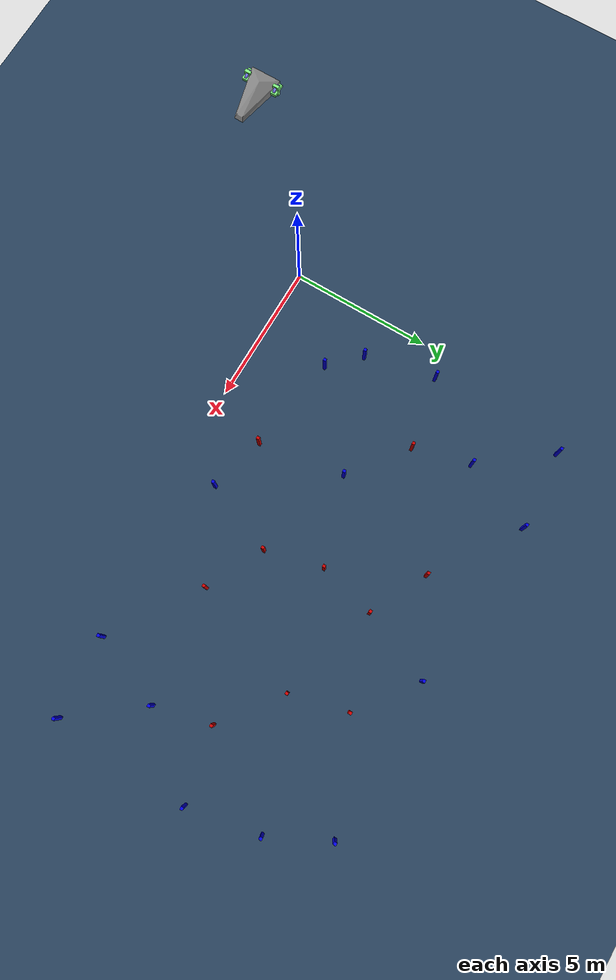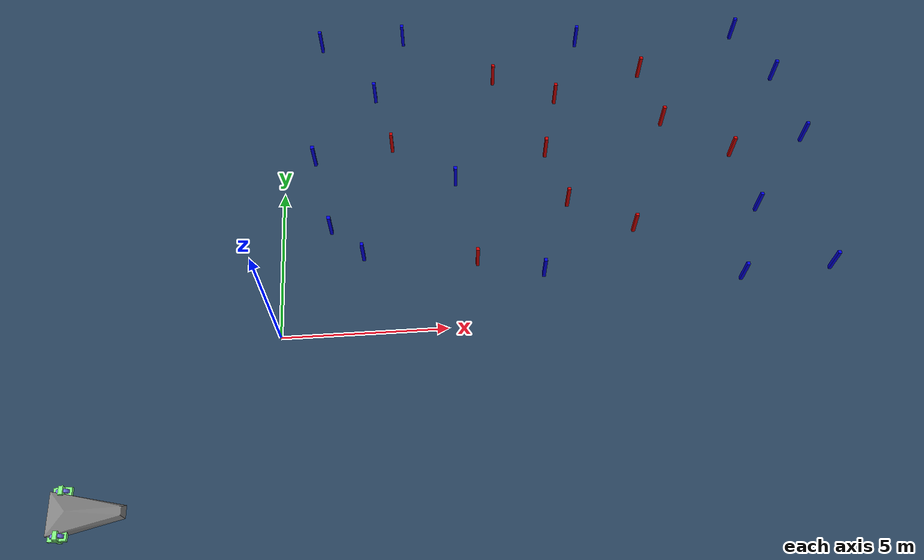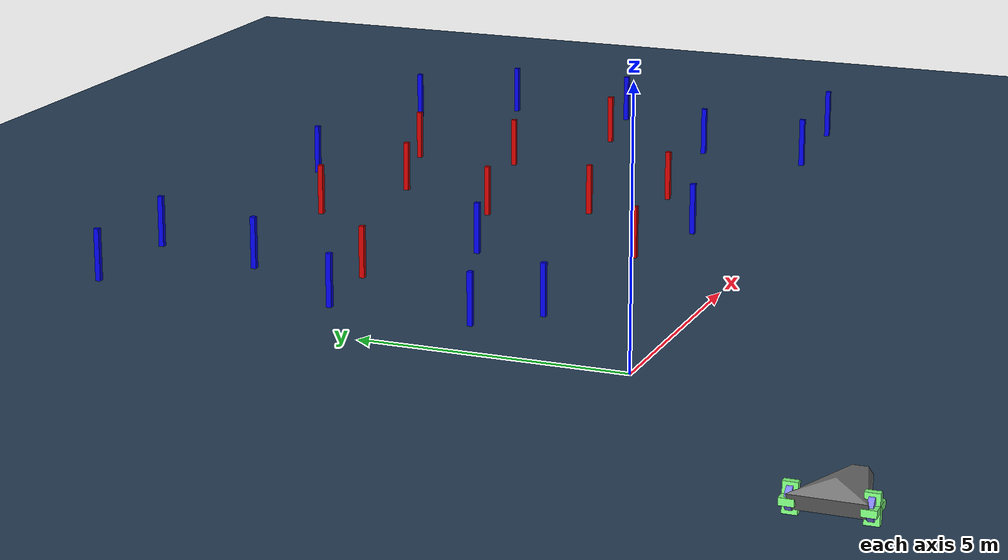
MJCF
<?xml version="1.0"?>
<mujoco>
    <asset>
        <texture name="grid" type="2d" builtin="checker" width="512" height="512" rgb1=".1 .2 .3"
            rgb2=".2 .3 .4" />
        <material name="grid" texture="grid" texrepeat="1 1" texuniform="true" reflectance=".2" />
        <mesh name="chasis" scale=".1 .06 .015"
            vertex=" 9   2   0
              -10  10  10
               9  -2   0
               10  3  -10
               10 -3  -10
              -8   10 -10
              -10 -10  10
              -8  -10 -10
              -5   0   20" />
    </asset>

    <default>
        <joint damping=".005" actuatorfrcrange="-1000 1000" />
        <default class="wheel">
            <geom type="cylinder" size=".2 .05" rgba=".5 .5 1 1" friction="0.01" />
        </default>
        <default class="decor">
            <site type="box" rgba=".5 1 .5 1" />
        </default>
    </default>

    <worldbody>
        <body name="floor" pos="10 10 0">
            <geom name="floor_geom" type="plane" size="50 50 1" material="grid" />
        </body>

        <body name="obstacles">
            <geom name="obstacle_0" type="box" size="0.05 0.05 0.5" pos="1.2 10.8 0.6"
                rgba="0 0 0.9 1" />
            <geom name="obstacle_1" type="box" size="0.05 0.05 0.5" pos="16.8 1.2 0.7"
                rgba="0 0 0.9 1" />
            <geom name="obstacle_2" type="box" size="0.05 0.05 0.5" pos="2.5 2.5 0.5" rgba="0 0 0.9 1" />
            <geom name="obstacle_3" type="box" size="0.05 0.05 0.5" pos="15.5 10.5 0.6"
                rgba="0 0 0.9 1" />
            <geom name="obstacle_4" type="box" size="0.05 0.05 0.5" pos="1.0 6.0 0.7" rgba="0 0 0.9 1" />
            <geom name="obstacle_5" type="box" size="0.05 0.05 0.5" pos="17.0 6.0 0.6"
                rgba="0 0 0.9 1" />
            <geom name="obstacle_6" type="box" size="0.05 0.05 0.5" pos="4.0 11.0 0.5"
                rgba="0 0 0.9 1" />
            <geom name="obstacle_7" type="box" size="0.05 0.05 0.5" pos="14.0 1.0 0.7"
                rgba="0 0 0.9 1" />
            <geom name="obstacle_8" type="box" size="0.05 0.05 0.5" pos="3.0 8.5 0.6" rgba="0 0 0.9 1" />
            <geom name="obstacle_9" type="box" size="0.05 0.05 0.5" pos="15.0 3.5 0.5"
                rgba="0 0 0.9 1" />
            <geom name="obstacle_10" type="box" size="0.05 0.05 0.5" pos="8.0 1.5 0.7"
                rgba="0 0 0.9 1" />
            <geom name="obstacle_11" type="box" size="0.05 0.05 0.5" pos="10.0 10.5 0.6"
                rgba="0 0 0.9 1" />
            <geom name="obstacle_12" type="box" size="0.05 0.05 0.5" pos="1.5 3.5 0.5"
                rgba="0 0 0.9 1" />
            <geom name="obstacle_13" type="box" size="0.05 0.05 0.5" pos="16.5 8.5 0.7"
                rgba="0 0 0.9 1" />
            <geom name="obstacle_14" type="box" size="0.05 0.05 0.5" pos="5.5 5.0 0.6"
                rgba="0 0 0.9 1" />
            <geom name="obstacle_15" type="box" size="0.05 0.05 0.5" pos="12.5 7.0 0.5"
                rgba="0.8 0 0 1" />
            <geom name="obstacle_16" type="box" size="0.05 0.05 0.5" pos="9.0 8.0 0.7"
                rgba="0.8 0 0 1" />
            <geom name="obstacle_17" type="box" size="0.05 0.05 0.5" pos="9.0 4.0 0.6"
                rgba="0.8 0 0 1" />
            <geom name="obstacle_18" type="box" size="0.05 0.05 0.5" pos="3.5 6.5 0.5"
                rgba="0.8 0 0 1" />
            <geom name="obstacle_19" type="box" size="0.05 0.05 0.5" pos="14.5 5.5 0.7"
                rgba="0.8 0 0 1" />
            <geom name="obstacle_20" type="box" size="0.05 0.05 0.5" pos="7.0 9.0 0.6"
                rgba="0.8 0 0 1" />
            <geom name="obstacle_21" type="box" size="0.05 0.05 0.5" pos="11.0 3.0 0.5"
                rgba="0.8 0 0 1" />
            <geom name="obstacle_22" type="box" size="0.05 0.05 0.5" pos="6.0 2.0 0.7"
                rgba="0.8 0 0 1" />
            <geom name="obstacle_23" type="box" size="0.05 0.05 0.5" pos="12.0 9.0 0.6"
                rgba="0.8 0 0 1" />
            <geom name="obstacle_24" type="box" size="0.05 0.05 0.5" pos="8.5 6.0 0.5"
                rgba="0.8 0 0 1" />
        </body>

        <body name="car" pos="-5 -5 0.5">
            <freejoint />
            <light name="top light" pos="0 0 2" mode="trackcom" diffuse=".4 .4 .4" />
            <geom name="chasis" type="mesh" mesh="chasis" />
            <geom name="front wheel" pos=".8 0 -.15" type="sphere" size=".15" condim="1"
                priority="1" />
            <light name="front light" pos="1 0 .2" dir="2 0 -1" diffuse="1 1 1" />
            <body name="left wheel" pos="-.7 .6 0" zaxis="0 1 0">
                <joint name="left" />
                <geom class="wheel" />
                <site class="decor" size=".06 .25 .12" />
                <site class="decor" size=".25 .06 .12" />
            </body>
            <body name="right wheel" pos="-.7 -.6 0" zaxis="0 1 0">
                <joint name="right" />
                <geom class="wheel" />
                <site class="decor" size=".06 .25 .12" />
                <site class="decor" size=".25 .06 .12" />
            </body>
        </body>
    </worldbody>

    <tendon>
        <fixed name="forward">
            <joint joint="left" coef="200.0" />
            <joint joint="right" coef="200.0" />
        </fixed>
        <fixed name="turn">
            <joint joint="left" coef="-200.0" />
            <joint joint="right" coef="200.0" />
        </fixed>
    </tendon>

    <actuator>
        <motor name="forward" tendon="forward" ctrlrange="-10 10" />
        <motor name="turn" tendon="turn" ctrlrange="-10 10" />
    </actuator>

    <sensor>
        <jointactuatorfrc name="right" joint="right" />
        <jointactuatorfrc name="left" joint="left" />
    </sensor>
</mujoco>
